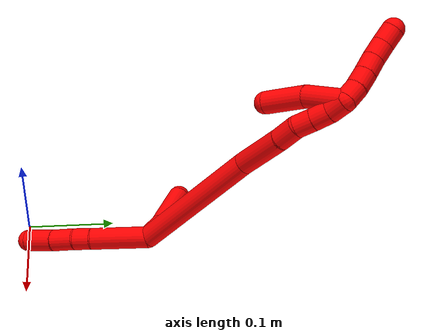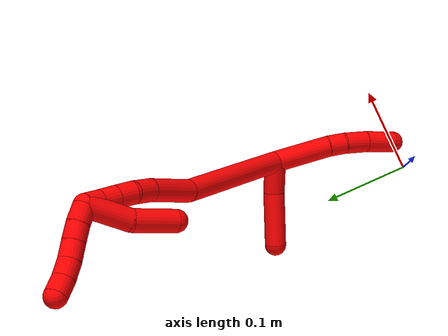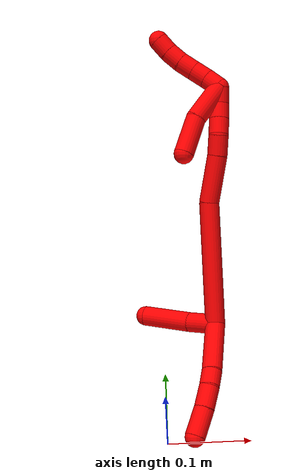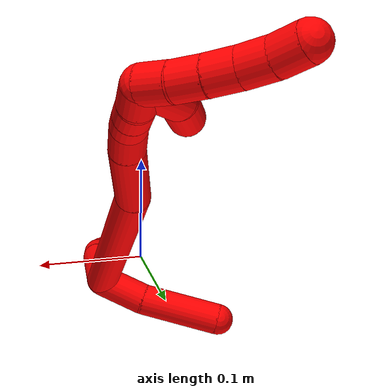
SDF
<sdf version="1.7">
 <world name="default">
  <model name="2">
   <static>0</static>
   <link name="2">
    <collision name="collision-cylinder-e_1_2_8">
     <pose>-0.008779 -0.012934 -0.029383 2.72692 -0.266923 -1.13613</pose>
     <geometry><cylinder><radius>0.0125</radius><length>0.066564</length></cylinder></geometry>
     <surface>
      <friction><ode><mu>1.16</mu><mu2>1.16</mu2><slip1>0</slip1><slip2>0</slip2></ode></friction>
      <contact><ode><kp>1e+06</kp><kd>1</kd><max_vel>0</max_vel><min_depth>0.001</min_depth></ode></contact>
     </surface>
    </collision>
    <visual name="visual-cylinder-e_1_2_8">
     <pose>-0.008779 -0.012934 -0.029383 2.72692 -0.266923 -1.13613</pose>
     <geometry><cylinder><radius>0.0125</radius><length>0.066564</length></cylinder></geometry>
     <material><ambient>1 0 0 1</ambient></material>
    </visual>
    <collision name="collision-cylinder-e_2_8_9">
     <pose>-0.020653 -0.02863 -0.067978 2.85034 -0.311425 -1.63875</pose>
     <geometry><cylinder><radius>0.0125</radius><length>0.020209</length></cylinder></geometry>
     <surface>
      <friction><ode><mu>1.16</mu><mu2>1.16</mu2><slip1>0</slip1><slip2>0</slip2></ode></friction>
      <contact><ode><kp>1e+06</kp><kd>1</kd><max_vel>0</max_vel><min_depth>0.001</min_depth></ode></contact>
     </surface>
    </collision>
    <visual name="visual-cylinder-e_2_8_9">
     <pose>-0.020653 -0.02863 -0.067978 2.85034 -0.311425 -1.63875</pose>
     <geometry><cylinder><radius>0.0125</radius><length>0.020209</length></cylinder></geometry>
     <material><ambient>1 0 0 1</ambient></material>
    </visual>
    <collision name="collision-cylinder-e_3_9_10">
     <pose>-0.027993 -0.033099 -0.090352 3.01257 -0.309502 -2.35637</pose>
     <geometry><cylinder><radius>0.0125</radius><length>0.027865</length></cylinder></geometry>
     <surface>
      <friction><ode><mu>1.16</mu><mu2>1.16</mu2><slip1>0</slip1><slip2>0</slip2></ode></friction>
      <contact><ode><kp>1e+06</kp><kd>1</kd><max_vel>0</max_vel><min_depth>0.001</min_depth></ode></contact>
     </surface>
    </collision>
    <visual name="visual-cylinder-e_3_9_10">
     <pose>-0.027993 -0.033099 -0.090352 3.01257 -0.309502 -2.35637</pose>
     <geometry><cylinder><radius>0.0125</radius><length>0.027865</length></cylinder></geometry>
     <material><ambient>1 0 0 1</ambient></material>
    </visual>
    <collision name="collision-cylinder-e_4_10_6">
     <pose>-0.038667 -0.036042 -0.119936 3.06655 -0.372197 -2.74799</pose>
     <geometry><cylinder><radius>0.0125</radius><length>0.035363</length></cylinder></geometry>
     <surface>
      <friction><ode><mu>1.16</mu><mu2>1.16</mu2><slip1>0</slip1><slip2>0</slip2></ode></friction>
      <contact><ode><kp>1e+06</kp><kd>1</kd><max_vel>0</max_vel><min_depth>0.001</min_depth></ode></contact>
     </surface>
    </collision>
    <visual name="visual-cylinder-e_4_10_6">
     <pose>-0.038667 -0.036042 -0.119936 3.06655 -0.372197 -2.74799</pose>
     <geometry><cylinder><radius>0.0125</radius><length>0.035363</length></cylinder></geometry>
     <material><ambient>1 0 0 1</ambient></material>
    </visual>
    <collision name="collision-cylinder-e_1_2_11">
     <pose>-0.009951 0.015722 0.001675 -1.46463 -0.561762 0.507607</pose>
     <geometry><cylinder><radius>0.0125</radius><length>0.037363</length></cylinder></geometry>
     <surface>
      <friction><ode><mu>1.16</mu><mu2>1.16</mu2><slip1>0</slip1><slip2>0</slip2></ode></friction>
      <contact><ode><kp>1e+06</kp><kd>1</kd><max_vel>0</max_vel><min_depth>0.001</min_depth></ode></contact>
     </surface>
    </collision>
    <visual name="visual-cylinder-e_1_2_11">
     <pose>-0.009951 0.015722 0.001675 -1.46463 -0.561762 0.507607</pose>
     <geometry><cylinder><radius>0.0125</radius><length>0.037363</length></cylinder></geometry>
     <material><ambient>1 0 0 1</ambient></material>
    </visual>
    <collision name="collision-cylinder-e_2_11_5">
     <pose>-0.040644 0.054489 0.007769 -1.38137 -0.723855 0.606523</pose>
     <geometry><cylinder><radius>0.0125</radius><length>0.062637</length></cylinder></geometry>
     <surface>
      <friction><ode><mu>1.16</mu><mu2>1.16</mu2><slip1>0</slip1><slip2>0</slip2></ode></friction>
      <contact><ode><kp>1e+06</kp><kd>1</kd><max_vel>0</max_vel><min_depth>0.001</min_depth></ode></contact>
     </surface>
    </collision>
    <visual name="visual-cylinder-e_2_11_5">
     <pose>-0.040644 0.054489 0.007769 -1.38137 -0.723855 0.606523</pose>
     <geometry><cylinder><radius>0.0125</radius><length>0.062637</length></cylinder></geometry>
     <material><ambient>1 0 0 1</ambient></material>
    </visual>
    <collision name="collision-cylinder-e_1_2_12">
     <pose>-0.01126 -0.011294 0.075304 0.148867 -0.146807 -0.010967</pose>
     <geometry><cylinder><radius>0.0125</radius><length>0.153949</length></cylinder></geometry>
     <surface>
      <friction><ode><mu>1.16</mu><mu2>1.16</mu2><slip1>0</slip1><slip2>0</slip2></ode></friction>
      <contact><ode><kp>1e+06</kp><kd>1</kd><max_vel>0</max_vel><min_depth>0.001</min_depth></ode></contact>
     </surface>
    </collision>
    <visual name="visual-cylinder-e_1_2_12">
     <pose>-0.01126 -0.011294 0.075304 0.148867 -0.146807 -0.010967</pose>
     <geometry><cylinder><radius>0.0125</radius><length>0.153949</length></cylinder></geometry>
     <material><ambient>1 0 0 1</ambient></material>
    </visual>
    <collision name="collision-cylinder-e_2_12_13">
     <pose>-0.022164 -0.032087 0.178914 0.323789 0.0119 0.001944</pose>
     <geometry><cylinder><radius>0.0125</radius><length>0.059717</length></cylinder></geometry>
     <surface>
      <friction><ode><mu>1.16</mu><mu2>1.16</mu2><slip1>0</slip1><slip2>0</slip2></ode></friction>
      <contact><ode><kp>1e+06</kp><kd>1</kd><max_vel>0</max_vel><min_depth>0.001</min_depth></ode></contact>
     </surface>
    </collision>
    <visual name="visual-cylinder-e_2_12_13">
     <pose>-0.022164 -0.032087 0.178914 0.323789 0.0119 0.001944</pose>
     <geometry><cylinder><radius>0.0125</radius><length>0.059717</length></cylinder></geometry>
     <material><ambient>1 0 0 1</ambient></material>
    </visual>
    <collision name="collision-cylinder-e_3_13_14">
     <pose>-0.022864 -0.044866 0.219512 0.260726 -0.082761 -0.010857</pose>
     <geometry><cylinder><radius>0.0125</radius><length>0.025534</length></cylinder></geometry>
     <surface>
      <friction><ode><mu>1.16</mu><mu2>1.16</mu2><slip1>0</slip1><slip2>0</slip2></ode></friction>
      <contact><ode><kp>1e+06</kp><kd>1</kd><max_vel>0</max_vel><min_depth>0.001</min_depth></ode></contact>
     </surface>
    </collision>
    <visual name="visual-cylinder-e_3_13_14">
     <pose>-0.022864 -0.044866 0.219512 0.260726 -0.082761 -0.010857</pose>
     <geometry><cylinder><radius>0.0125</radius><length>0.025534</length></cylinder></geometry>
     <material><ambient>1 0 0 1</ambient></material>
    </visual>
    <collision name="collision-cylinder-e_4_14_15">
     <pose>-0.023575 -0.048015 0.242043 -0.012788 0.033626 -0.000215</pose>
     <geometry><cylinder><radius>0.0125</radius><length>0.020487</length></cylinder></geometry>
     <surface>
      <friction><ode><mu>1.16</mu><mu2>1.16</mu2><slip1>0</slip1><slip2>0</slip2></ode></friction>
      <contact><ode><kp>1e+06</kp><kd>1</kd><max_vel>0</max_vel><min_depth>0.001</min_depth></ode></contact>
     </surface>
    </collision>
    <visual name="visual-cylinder-e_4_14_15">
     <pose>-0.023575 -0.048015 0.242043 -0.012788 0.033626 -0.000215</pose>
     <geometry><cylinder><radius>0.0125</radius><length>0.020487</length></cylinder></geometry>
     <material><ambient>1 0 0 1</ambient></material>
    </visual>
    <collision name="collision-cylinder-e_5_15_16">
     <pose>-0.023238 -0.047786 0.262301 -0.00983 -0.000655 3e-06</pose>
     <geometry><cylinder><radius>0.0125</radius><length>0.020043</length></cylinder></geometry>
     <surface>
      <friction><ode><mu>1.16</mu><mu2>1.16</mu2><slip1>0</slip1><slip2>0</slip2></ode></friction>
      <contact><ode><kp>1e+06</kp><kd>1</kd><max_vel>0</max_vel><min_depth>0.001</min_depth></ode></contact>
     </surface>
    </collision>
    <visual name="visual-cylinder-e_5_15_16">
     <pose>-0.023238 -0.047786 0.262301 -0.00983 -0.000655 3e-06</pose>
     <geometry><cylinder><radius>0.0125</radius><length>0.020043</length></cylinder></geometry>
     <material><ambient>1 0 0 1</ambient></material>
    </visual>
    <collision name="collision-cylinder-e_6_16_1">
     <pose>-0.024304 -0.049408 0.282253 0.171539 -0.104753 -0.009015</pose>
     <geometry><cylinder><radius>0.0125</radius><length>0.020269</length></cylinder></geometry>
     <surface>
      <friction><ode><mu>1.16</mu><mu2>1.16</mu2><slip1>0</slip1><slip2>0</slip2></ode></friction>
      <contact><ode><kp>1e+06</kp><kd>1</kd><max_vel>0</max_vel><min_depth>0.001</min_depth></ode></contact>
     </surface>
    </collision>
    <visual name="visual-cylinder-e_6_16_1">
     <pose>-0.024304 -0.049408 0.282253 0.171539 -0.104753 -0.009015</pose>
     <geometry><cylinder><radius>0.0125</radius><length>0.020269</length></cylinder></geometry>
     <material><ambient>1 0 0 1</ambient></material>
    </visual>
    <collision name="collision-cylinder-e_1_1_17">
     <pose>-0.031341 -0.045953 0.298308 -0.701595 -0.640629 0.241606</pose>
     <geometry><cylinder><radius>0.0125</radius><length>0.02</length></cylinder></geometry>
     <surface>
      <friction><ode><mu>1.16</mu><mu2>1.16</mu2><slip1>0</slip1><slip2>0</slip2></ode></friction>
      <contact><ode><kp>1e+06</kp><kd>1</kd><max_vel>0</max_vel><min_depth>0.001</min_depth></ode></contact>
     </surface>
    </collision>
    <visual name="visual-cylinder-e_1_1_17">
     <pose>-0.031341 -0.045953 0.298308 -0.701595 -0.640629 0.241606</pose>
     <geometry><cylinder><radius>0.0125</radius><length>0.02</length></cylinder></geometry>
     <material><ambient>1 0 0 1</ambient></material>
    </visual>
    <collision name="collision-cylinder-e_2_17_18">
     <pose>-0.044343 -0.036307 0.309968 -0.679379 -0.77895 0.288081</pose>
     <geometry><cylinder><radius>0.0125</radius><length>0.02</length></cylinder></geometry>
     <surface>
      <friction><ode><mu>1.16</mu><mu2>1.16</mu2><slip1>0</slip1><slip2>0</slip2></ode></friction>
      <contact><ode><kp>1e+06</kp><kd>1</kd><max_vel>0</max_vel><min_depth>0.001</min_depth></ode></contact>
     </surface>
    </collision>
    <visual name="visual-cylinder-e_2_17_18">
     <pose>-0.044343 -0.036307 0.309968 -0.679379 -0.77895 0.288081</pose>
     <geometry><cylinder><radius>0.0125</radius><length>0.02</length></cylinder></geometry>
     <material><ambient>1 0 0 1</ambient></material>
    </visual>
    <collision name="collision-cylinder-e_3_18_19">
     <pose>-0.058668 -0.027785 0.321008 -0.634538 -0.818317 0.282874</pose>
     <geometry><cylinder><radius>0.0125</radius><length>0.02</length></cylinder></geometry>
     <surface>
      <friction><ode><mu>1.16</mu><mu2>1.16</mu2><slip1>0</slip1><slip2>0</slip2></ode></friction>
      <contact><ode><kp>1e+06</kp><kd>1</kd><max_vel>0</max_vel><min_depth>0.001</min_depth></ode></contact>
     </surface>
    </collision>
    <visual name="visual-cylinder-e_3_18_19">
     <pose>-0.058668 -0.027785 0.321008 -0.634538 -0.818317 0.282874</pose>
     <geometry><cylinder><radius>0.0125</radius><length>0.02</length></cylinder></geometry>
     <material><ambient>1 0 0 1</ambient></material>
    </visual>
    <collision name="collision-cylinder-e_4_19_20">
     <pose>-0.072762 -0.02019 0.332938 -0.503873 -0.74693 0.201051</pose>
     <geometry><cylinder><radius>0.0125</radius><length>0.02</length></cylinder></geometry>
     <surface>
      <friction><ode><mu>1.16</mu><mu2>1.16</mu2><slip1>0</slip1><slip2>0</slip2></ode></friction>
      <contact><ode><kp>1e+06</kp><kd>1</kd><max_vel>0</max_vel><min_depth>0.001</min_depth></ode></contact>
     </surface>
    </collision>
    <visual name="visual-cylinder-e_4_19_20">
     <pose>-0.072762 -0.02019 0.332938 -0.503873 -0.74693 0.201051</pose>
     <geometry><cylinder><radius>0.0125</radius><length>0.02</length></cylinder></geometry>
     <material><ambient>1 0 0 1</ambient></material>
    </visual>
    <collision name="collision-cylinder-e_5_20_4">
     <pose>-0.085847 -0.014238 0.346754 -0.315088 -0.680397 0.112342</pose>
     <geometry><cylinder><radius>0.0125</radius><length>0.02</length></cylinder></geometry>
     <surface>
      <friction><ode><mu>1.16</mu><mu2>1.16</mu2><slip1>0</slip1><slip2>0</slip2></ode></friction>
      <contact><ode><kp>1e+06</kp><kd>1</kd><max_vel>0</max_vel><min_depth>0.001</min_depth></ode></contact>
     </surface>
    </collision>
    <visual name="visual-cylinder-e_5_20_4">
     <pose>-0.085847 -0.014238 0.346754 -0.315088 -0.680397 0.112342</pose>
     <geometry><cylinder><radius>0.0125</radius><length>0.02</length></cylinder></geometry>
     <material><ambient>1 0 0 1</ambient></material>
    </visual>
    <collision name="collision-cylinder-e_1_1_21">
     <pose>-0.039146 -0.046776 0.271288 -2.93623 -0.573363 2.46909</pose>
     <geometry><cylinder><radius>0.0125</radius><length>0.050814</length></cylinder></geometry>
     <surface>
      <friction><ode><mu>1.16</mu><mu2>1.16</mu2><slip1>0</slip1><slip2>0</slip2></ode></friction>
      <contact><ode><kp>1e+06</kp><kd>1</kd><max_vel>0</max_vel><min_depth>0.001</min_depth></ode></contact>
     </surface>
    </collision>
    <visual name="visual-cylinder-e_1_1_21">
     <pose>-0.039146 -0.046776 0.271288 -2.93623 -0.573363 2.46909</pose>
     <geometry><cylinder><radius>0.0125</radius><length>0.050814</length></cylinder></geometry>
     <material><ambient>1 0 0 1</ambient></material>
    </visual>
    <collision name="collision-cylinder-e_2_21_3">
     <pose>-0.060477 -0.04161 0.227001 -3.10686 -0.311994 2.92161</pose>
     <geometry><cylinder><radius>0.0125</radius><length>0.049186</length></cylinder></geometry>
     <surface>
      <friction><ode><mu>1.16</mu><mu2>1.16</mu2><slip1>0</slip1><slip2>0</slip2></ode></friction>
      <contact><ode><kp>1e+06</kp><kd>1</kd><max_vel>0</max_vel><min_depth>0.001</min_depth></ode></contact>
     </surface>
    </collision>
    <visual name="visual-cylinder-e_2_21_3">
     <pose>-0.060477 -0.04161 0.227001 -3.10686 -0.311994 2.92161</pose>
     <geometry><cylinder><radius>0.0125</radius><length>0.049186</length></cylinder></geometry>
     <material><ambient>1 0 0 1</ambient></material>
    </visual>
    <collision name="collision-sphere-3">
     <pose>-0.068026 -0.040798 0.20361 0 -0 0</pose>
     <geometry><sphere><radius>0.0125</radius></sphere></geometry>
     <surface>
      <friction><ode><mu>1.16</mu><mu2>1.16</mu2><slip1>0</slip1><slip2>0</slip2></ode></friction>
      <contact><ode><kp>1e+06</kp><kd>1</kd><max_vel>0</max_vel><min_depth>0.001</min_depth></ode></contact>
     </surface>
    </collision>
    <visual name="visual-sphere-3">
     <pose>-0.068026 -0.040798 0.20361 0 -0 0</pose>
     <geometry><sphere><radius>0.0125</radius></sphere></geometry>
     <material><ambient>1 0 0 1</ambient></material>
    </visual>
    <collision name="collision-sphere-21">
     <pose>-0.052928 -0.042423 0.250393 0 -0 0</pose>
     <geometry><sphere><radius>0.0125</radius></sphere></geometry>
     <surface>
      <friction><ode><mu>1.16</mu><mu2>1.16</mu2><slip1>0</slip1><slip2>0</slip2></ode></friction>
      <contact><ode><kp>1e+06</kp><kd>1</kd><max_vel>0</max_vel><min_depth>0.001</min_depth></ode></contact>
     </surface>
    </collision>
    <visual name="visual-sphere-21">
     <pose>-0.052928 -0.042423 0.250393 0 -0 0</pose>
     <geometry><sphere><radius>0.0125</radius></sphere></geometry>
     <material><ambient>1 0 0 1</ambient></material>
    </visual>
    <collision name="collision-sphere-4">
     <pose>-0.092138 -0.011829 0.354145 0 -0 0</pose>
     <geometry><sphere><radius>0.0125</radius></sphere></geometry>
     <surface>
      <friction><ode><mu>1.16</mu><mu2>1.16</mu2><slip1>0</slip1><slip2>0</slip2></ode></friction>
      <contact><ode><kp>1e+06</kp><kd>1</kd><max_vel>0</max_vel><min_depth>0.001</min_depth></ode></contact>
     </surface>
    </collision>
    <visual name="visual-sphere-4">
     <pose>-0.092138 -0.011829 0.354145 0 -0 0</pose>
     <geometry><sphere><radius>0.0125</radius></sphere></geometry>
     <material><ambient>1 0 0 1</ambient></material>
    </visual>
    <collision name="collision-sphere-20">
     <pose>-0.079556 -0.016647 0.339364 0 -0 0</pose>
     <geometry><sphere><radius>0.0125</radius></sphere></geometry>
     <surface>
      <friction><ode><mu>1.16</mu><mu2>1.16</mu2><slip1>0</slip1><slip2>0</slip2></ode></friction>
      <contact><ode><kp>1e+06</kp><kd>1</kd><max_vel>0</max_vel><min_depth>0.001</min_depth></ode></contact>
     </surface>
    </collision>
    <visual name="visual-sphere-20">
     <pose>-0.079556 -0.016647 0.339364 0 -0 0</pose>
     <geometry><sphere><radius>0.0125</radius></sphere></geometry>
     <material><ambient>1 0 0 1</ambient></material>
    </visual>
    <collision name="collision-sphere-11">
     <pose>-0.019903 0.031443 0.003351 0 -0 0</pose>
     <geometry><sphere><radius>0.0125</radius></sphere></geometry>
     <surface>
      <friction><ode><mu>1.16</mu><mu2>1.16</mu2><slip1>0</slip1><slip2>0</slip2></ode></friction>
      <contact><ode><kp>1e+06</kp><kd>1</kd><max_vel>0</max_vel><min_depth>0.001</min_depth></ode></contact>
     </surface>
    </collision>
    <visual name="visual-sphere-11">
     <pose>-0.019903 0.031443 0.003351 0 -0 0</pose>
     <geometry><sphere><radius>0.0125</radius></sphere></geometry>
     <material><ambient>1 0 0 1</ambient></material>
    </visual>
    <collision name="collision-sphere-6">
     <pose>-0.045097 -0.037276 -0.13636 0 -0 0</pose>
     <geometry><sphere><radius>0.0125</radius></sphere></geometry>
     <surface>
      <friction><ode><mu>1.16</mu><mu2>1.16</mu2><slip1>0</slip1><slip2>0</slip2></ode></friction>
      <contact><ode><kp>1e+06</kp><kd>1</kd><max_vel>0</max_vel><min_depth>0.001</min_depth></ode></contact>
     </surface>
    </collision>
    <visual name="visual-sphere-6">
     <pose>-0.045097 -0.037276 -0.13636 0 -0 0</pose>
     <geometry><sphere><radius>0.0125</radius></sphere></geometry>
     <material><ambient>1 0 0 1</ambient></material>
    </visual>
    <collision name="collision-sphere-10">
     <pose>-0.032237 -0.034807 -0.103512 0 -0 0</pose>
     <geometry><sphere><radius>0.0125</radius></sphere></geometry>
     <surface>
      <friction><ode><mu>1.16</mu><mu2>1.16</mu2><slip1>0</slip1><slip2>0</slip2></ode></friction>
      <contact><ode><kp>1e+06</kp><kd>1</kd><max_vel>0</max_vel><min_depth>0.001</min_depth></ode></contact>
     </surface>
    </collision>
    <visual name="visual-sphere-10">
     <pose>-0.032237 -0.034807 -0.103512 0 -0 0</pose>
     <geometry><sphere><radius>0.0125</radius></sphere></geometry>
     <material><ambient>1 0 0 1</ambient></material>
    </visual>
    <collision name="collision-sphere-9">
     <pose>-0.023749 -0.031392 -0.077192 0 -0 0</pose>
     <geometry><sphere><radius>0.0125</radius></sphere></geometry>
     <surface>
      <friction><ode><mu>1.16</mu><mu2>1.16</mu2><slip1>0</slip1><slip2>0</slip2></ode></friction>
      <contact><ode><kp>1e+06</kp><kd>1</kd><max_vel>0</max_vel><min_depth>0.001</min_depth></ode></contact>
     </surface>
    </collision>
    <visual name="visual-sphere-9">
     <pose>-0.023749 -0.031392 -0.077192 0 -0 0</pose>
     <geometry><sphere><radius>0.0125</radius></sphere></geometry>
     <material><ambient>1 0 0 1</ambient></material>
    </visual>
    <collision name="collision-sphere-2">
     <geometry><sphere><radius>0.0125</radius></sphere></geometry>
     <surface>
      <friction><ode><mu>1.16</mu><mu2>1.16</mu2><slip1>0</slip1><slip2>0</slip2></ode></friction>
      <contact><ode><kp>1e+06</kp><kd>1</kd><max_vel>0</max_vel><min_depth>0.001</min_depth></ode></contact>
     </surface>
    </collision>
    <visual name="visual-sphere-2">
     <geometry><sphere><radius>0.0125</radius></sphere></geometry>
     <material><ambient>1 0 0 1</ambient></material>
    </visual>
    <collision name="collision-sphere-19">
     <pose>-0.065968 -0.023733 0.326512 0 -0 0</pose>
     <geometry><sphere><radius>0.0125</radius></sphere></geometry>
     <surface>
      <friction><ode><mu>1.16</mu><mu2>1.16</mu2><slip1>0</slip1><slip2>0</slip2></ode></friction>
      <contact><ode><kp>1e+06</kp><kd>1</kd><max_vel>0</max_vel><min_depth>0.001</min_depth></ode></contact>
     </surface>
    </collision>
    <visual name="visual-sphere-19">
     <pose>-0.065968 -0.023733 0.326512 0 -0 0</pose>
     <geometry><sphere><radius>0.0125</radius></sphere></geometry>
     <material><ambient>1 0 0 1</ambient></material>
    </visual>
    <collision name="collision-sphere-8">
     <pose>-0.017557 -0.025868 -0.058765 0 -0 0</pose>
     <geometry><sphere><radius>0.0125</radius></sphere></geometry>
     <surface>
      <friction><ode><mu>1.16</mu><mu2>1.16</mu2><slip1>0</slip1><slip2>0</slip2></ode></friction>
      <contact><ode><kp>1e+06</kp><kd>1</kd><max_vel>0</max_vel><min_depth>0.001</min_depth></ode></contact>
     </surface>
    </collision>
    <visual name="visual-sphere-8">
     <pose>-0.017557 -0.025868 -0.058765 0 -0 0</pose>
     <geometry><sphere><radius>0.0125</radius></sphere></geometry>
     <material><ambient>1 0 0 1</ambient></material>
    </visual>
    <collision name="collision-sphere-5">
     <pose>-0.061386 0.077535 0.012187 0 -0 0</pose>
     <geometry><sphere><radius>0.0125</radius></sphere></geometry>
     <surface>
      <friction><ode><mu>1.16</mu><mu2>1.16</mu2><slip1>0</slip1><slip2>0</slip2></ode></friction>
      <contact><ode><kp>1e+06</kp><kd>1</kd><max_vel>0</max_vel><min_depth>0.001</min_depth></ode></contact>
     </surface>
    </collision>
    <visual name="visual-sphere-5">
     <pose>-0.061386 0.077535 0.012187 0 -0 0</pose>
     <geometry><sphere><radius>0.0125</radius></sphere></geometry>
     <material><ambient>1 0 0 1</ambient></material>
    </visual>
    <collision name="collision-sphere-12">
     <pose>-0.02252 -0.022588 0.150609 0 -0 0</pose>
     <geometry><sphere><radius>0.0125</radius></sphere></geometry>
     <surface>
      <friction><ode><mu>1.16</mu><mu2>1.16</mu2><slip1>0</slip1><slip2>0</slip2></ode></friction>
      <contact><ode><kp>1e+06</kp><kd>1</kd><max_vel>0</max_vel><min_depth>0.001</min_depth></ode></contact>
     </surface>
    </collision>
    <visual name="visual-sphere-12">
     <pose>-0.02252 -0.022588 0.150609 0 -0 0</pose>
     <geometry><sphere><radius>0.0125</radius></sphere></geometry>
     <material><ambient>1 0 0 1</ambient></material>
    </visual>
    <collision name="collision-sphere-13">
     <pose>-0.021809 -0.041586 0.207219 0 -0 0</pose>
     <geometry><sphere><radius>0.0125</radius></sphere></geometry>
     <surface>
      <friction><ode><mu>1.16</mu><mu2>1.16</mu2><slip1>0</slip1><slip2>0</slip2></ode></friction>
      <contact><ode><kp>1e+06</kp><kd>1</kd><max_vel>0</max_vel><min_depth>0.001</min_depth></ode></contact>
     </surface>
    </collision>
    <visual name="visual-sphere-13">
     <pose>-0.021809 -0.041586 0.207219 0 -0 0</pose>
     <geometry><sphere><radius>0.0125</radius></sphere></geometry>
     <material><ambient>1 0 0 1</ambient></material>
    </visual>
    <collision name="collision-sphere-14">
     <pose>-0.02392 -0.048146 0.231806 0 -0 0</pose>
     <geometry><sphere><radius>0.0125</radius></sphere></geometry>
     <surface>
      <friction><ode><mu>1.16</mu><mu2>1.16</mu2><slip1>0</slip1><slip2>0</slip2></ode></friction>
      <contact><ode><kp>1e+06</kp><kd>1</kd><max_vel>0</max_vel><min_depth>0.001</min_depth></ode></contact>
     </surface>
    </collision>
    <visual name="visual-sphere-14">
     <pose>-0.02392 -0.048146 0.231806 0 -0 0</pose>
     <geometry><sphere><radius>0.0125</radius></sphere></geometry>
     <material><ambient>1 0 0 1</ambient></material>
    </visual>
    <collision name="collision-sphere-15">
     <pose>-0.023231 -0.047884 0.25228 0 -0 0</pose>
     <geometry><sphere><radius>0.0125</radius></sphere></geometry>
     <surface>
      <friction><ode><mu>1.16</mu><mu2>1.16</mu2><slip1>0</slip1><slip2>0</slip2></ode></friction>
      <contact><ode><kp>1e+06</kp><kd>1</kd><max_vel>0</max_vel><min_depth>0.001</min_depth></ode></contact>
     </surface>
    </collision>
    <visual name="visual-sphere-15">
     <pose>-0.023231 -0.047884 0.25228 0 -0 0</pose>
     <geometry><sphere><radius>0.0125</radius></sphere></geometry>
     <material><ambient>1 0 0 1</ambient></material>
    </visual>
    <collision name="collision-sphere-16">
     <pose>-0.023244 -0.047687 0.272322 0 -0 0</pose>
     <geometry><sphere><radius>0.0125</radius></sphere></geometry>
     <surface>
      <friction><ode><mu>1.16</mu><mu2>1.16</mu2><slip1>0</slip1><slip2>0</slip2></ode></friction>
      <contact><ode><kp>1e+06</kp><kd>1</kd><max_vel>0</max_vel><min_depth>0.001</min_depth></ode></contact>
     </surface>
    </collision>
    <visual name="visual-sphere-16">
     <pose>-0.023244 -0.047687 0.272322 0 -0 0</pose>
     <geometry><sphere><radius>0.0125</radius></sphere></geometry>
     <material><ambient>1 0 0 1</ambient></material>
    </visual>
    <collision name="collision-sphere-1">
     <pose>-0.025364 -0.051128 0.292184 0 -0 0</pose>
     <geometry><sphere><radius>0.0125</radius></sphere></geometry>
     <surface>
      <friction><ode><mu>1.16</mu><mu2>1.16</mu2><slip1>0</slip1><slip2>0</slip2></ode></friction>
      <contact><ode><kp>1e+06</kp><kd>1</kd><max_vel>0</max_vel><min_depth>0.001</min_depth></ode></contact>
     </surface>
    </collision>
    <visual name="visual-sphere-1">
     <pose>-0.025364 -0.051128 0.292184 0 -0 0</pose>
     <geometry><sphere><radius>0.0125</radius></sphere></geometry>
     <material><ambient>1 0 0 1</ambient></material>
    </visual>
    <collision name="collision-sphere-18">
     <pose>-0.051368 -0.031836 0.315504 0 -0 0</pose>
     <geometry><sphere><radius>0.0125</radius></sphere></geometry>
     <surface>
      <friction><ode><mu>1.16</mu><mu2>1.16</mu2><slip1>0</slip1><slip2>0</slip2></ode></friction>
      <contact><ode><kp>1e+06</kp><kd>1</kd><max_vel>0</max_vel><min_depth>0.001</min_depth></ode></contact>
     </surface>
    </collision>
    <visual name="visual-sphere-18">
     <pose>-0.051368 -0.031836 0.315504 0 -0 0</pose>
     <geometry><sphere><radius>0.0125</radius></sphere></geometry>
     <material><ambient>1 0 0 1</ambient></material>
    </visual>
    <collision name="collision-sphere-17">
     <pose>-0.037318 -0.040779 0.304431 0 -0 0</pose>
     <geometry><sphere><radius>0.0125</radius></sphere></geometry>
     <surface>
      <friction><ode><mu>1.16</mu><mu2>1.16</mu2><slip1>0</slip1><slip2>0</slip2></ode></friction>
      <contact><ode><kp>1e+06</kp><kd>1</kd><max_vel>0</max_vel><min_depth>0.001</min_depth></ode></contact>
     </surface>
    </collision>
    <visual name="visual-sphere-17">
     <pose>-0.037318 -0.040779 0.304431 0 -0 0</pose>
     <geometry><sphere><radius>0.0125</radius></sphere></geometry>
     <material><ambient>1 0 0 1</ambient></material>
    </visual>
    <inertial>
     <pose>-0.029296 -0.01959 0.12188 0 -0 0</pose>
     <mass>0.75</mass>
     <inertia>
      <ixx>0.000314</ixx>
      <ixy>0</ixy>
      <ixz>0</ixz>
      <iyy>0.000368</iyy>
      <iyz>0</iyz>
      <izz>0.000138</izz>
     </inertia>
    </inertial>
   </link>
   <pose>0.064966 0.142395 0.044977 -0.909433 0.393053 0.222892</pose>
  </model>
 </world>
</sdf>
